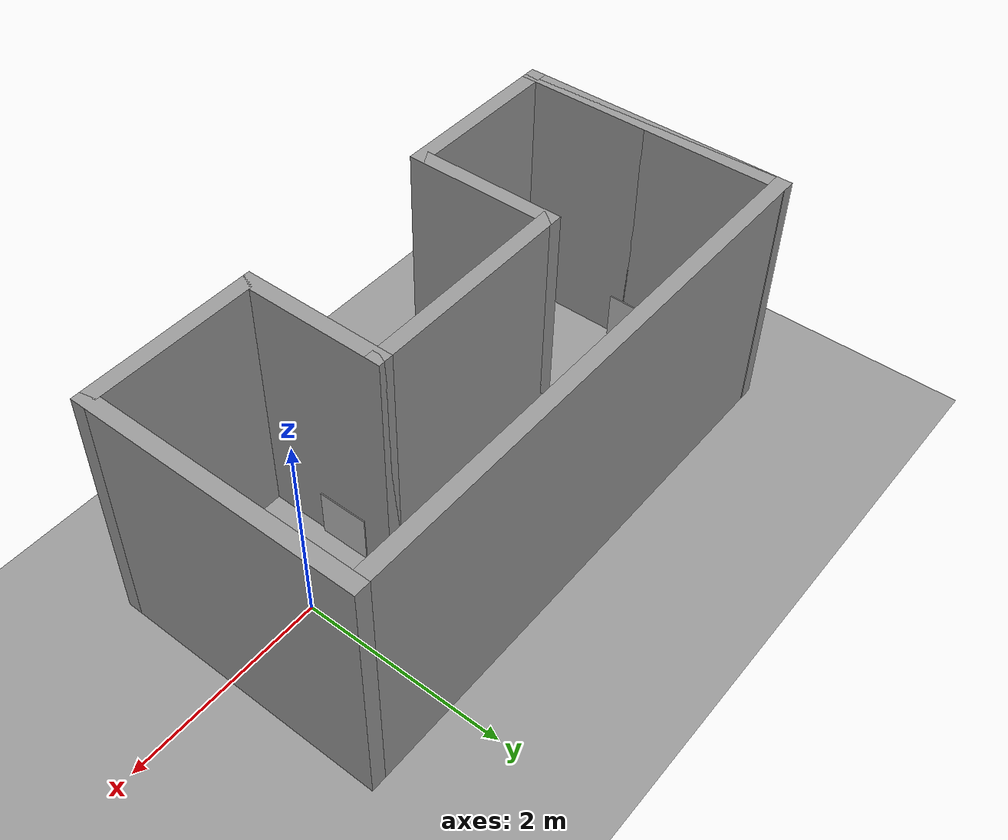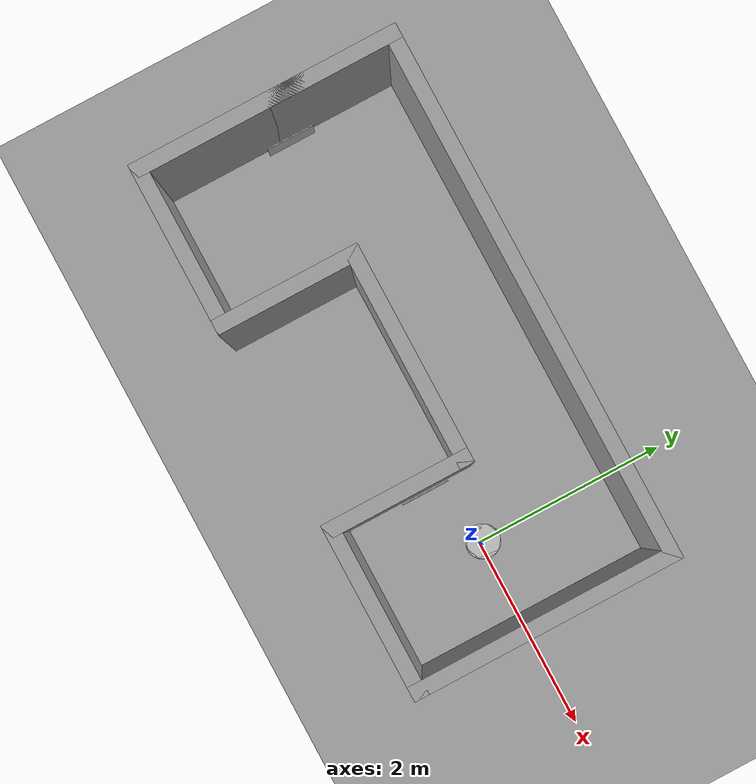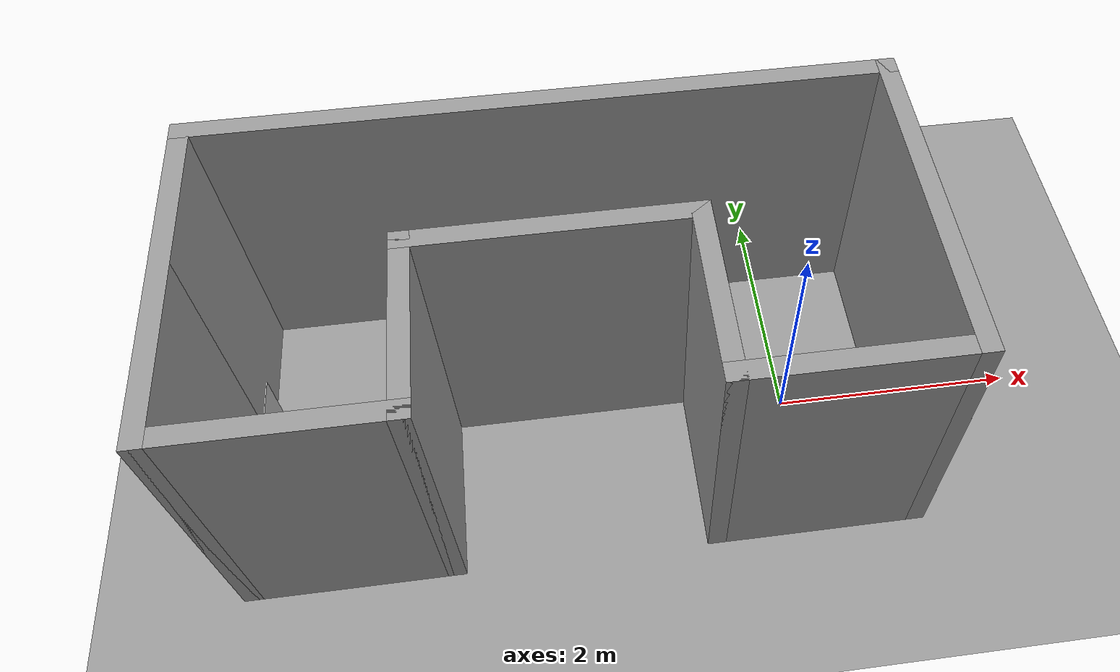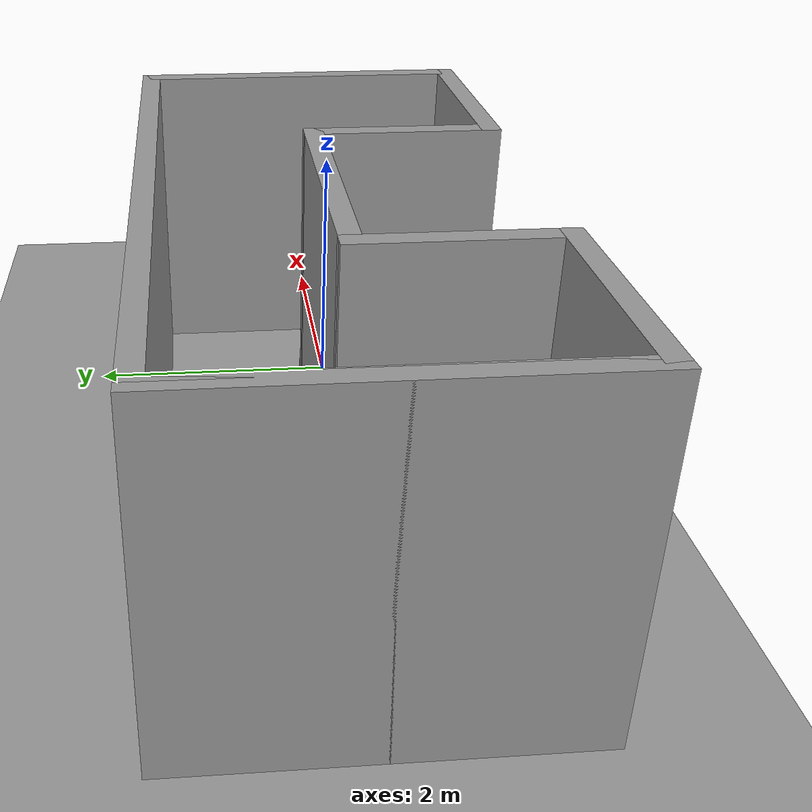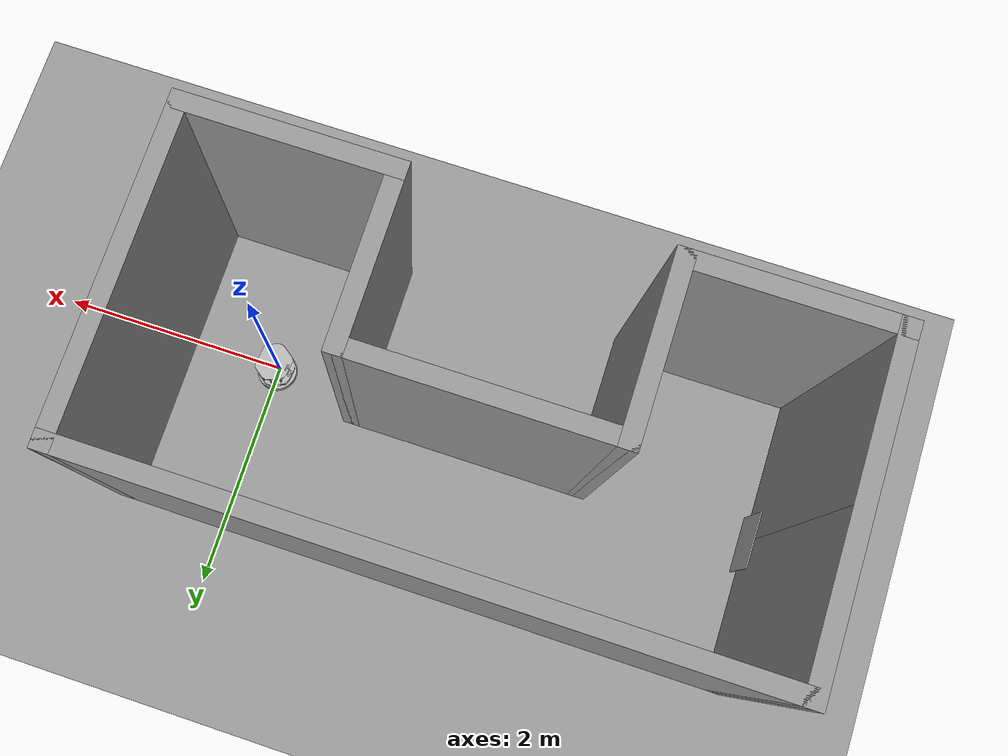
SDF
<sdf version="1.6">
 <world name="default">
  <light name="sun" type="directional">
   <pose>0 0 10 0 -0 0</pose>
   <diffuse>0.8 0.8 0.8 1</diffuse>
   <specular>0.2 0.2 0.2 1</specular>
   <attenuation>
    <range>1000</range>
    <constant>0.9</constant>
    <linear>0.01</linear>
    <quadratic>0.001</quadratic>
   </attenuation>
   <direction>0.5 0.1 -0.9</direction>
  </light>
  <scene><ambient>0.4 0.4 0.4 1</ambient><background>0.7 0.7 0.7 1</background><shadows>1</shadows></scene>
  <physics name="default_physics" default="0" type="ode">
   <max_step_size>0.01</max_step_size>
   <real_time_factor>1</real_time_factor>
   <real_time_update_rate>100</real_time_update_rate>
  </physics>
  <model name="ground_plane_0">
   <static>1</static>
   <link name="link">
    <collision name="collision">
     <geometry><plane><normal>0 0 1</normal><size>100 100</size></plane></geometry>
     <surface><friction><ode><mu>100</mu><mu2>50</mu2></ode></friction></surface>
    </collision>
    <visual name="visual">
     <cast_shadows>0</cast_shadows>
     <geometry><plane><normal>0 0 1</normal><size>100 100</size></plane></geometry>
     <material>
      <script><uri>file://media/materials/scripts/gazebo.material</uri><name>Gazebo/Grey</name></script>
     </material>
    </visual>
    <velocity_decay><linear>0</linear><angular>0</angular></velocity_decay>
   </link>
   <pose>0.497681 0 0 0 -0 0</pose>
  </model>
  <gravity>0 0 -9.8</gravity>
  <magnetic_field>6e-06 2.3e-05 -4.2e-05</magnetic_field>
  <atmosphere type="adiabatic"/>
  <spherical_coordinates>
   <surface_model>EARTH_WGS84</surface_model>
   <latitude_deg>0</latitude_deg>
   <longitude_deg>0</longitude_deg>
   <elevation>0</elevation>
   <heading_deg>0</heading_deg>
  </spherical_coordinates>
  <model name="mobile_base">
   <link name="base_footprint">
    <inertial>
     <pose>-0.002635 -4.1e-05 0.129243 0 -0 0</pose>
     <mass>4.6973</mass>
     <inertia>
      <ixx>0.1365</ixx>
      <ixy>-2.51802e-05</ixy>
      <ixz>0.0108194</ixz>
      <iyy>0.132157</iyy>
      <iyz>4.89572e-05</iyz>
      <izz>0.0741648</izz>
     </inertia>
    </inertial>
    <collision name="base_footprint_fixed_joint_lump__base_collision">
     <pose>0 0 0.06969 0 -0 0</pose>
     <geometry><cylinder><length>0.10938</length><radius>0.178</radius></cylinder></geometry>
    </collision>
    <collision name="base_footprint_fixed_joint_lump__camera_link_collision_1">
     <pose>-0.087 -0.0015 0.2972 0 -0 0</pose>
     <geometry><box><size>0.073 0.276 0.072</size></box></geometry>
    </collision>
    <collision name="base_footprint_fixed_joint_lump__caster_back_link_collision_2">
     <pose>-0.135 0 0.0192 -1.5708 0 0</pose>
     <geometry><cylinder><length>0.0176</length><radius>0.017</radius></cylinder></geometry>
     <surface>
      <contact><ode><kp>1e+06</kp><kd>100</kd><max_vel>1</max_vel><min_depth>0.001</min_depth></ode></contact>
      <friction><ode><mu>0</mu><mu2>0</mu2></ode></friction>
     </surface>
    </collision>
    <collision name="base_footprint_fixed_joint_lump__caster_front_link_collision_3">
     <pose>0.115 0 0.0172 -1.5708 0 0</pose>
     <geometry><cylinder><length>0.0176</length><radius>0.017</radius></cylinder></geometry>
     <surface>
      <contact><ode><kp>1e+06</kp><kd>100</kd><max_vel>1</max_vel><min_depth>0.001</min_depth></ode></contact>
      <friction><ode><mu>0</mu><mu2>0</mu2></ode></friction>
     </surface>
    </collision>
    <collision name="base_footprint_fixed_joint_lump__mount_asus_xtion_pro_link_collision_4">
     <pose>-0.1024 0 0.2822 0 -0 0</pose>
     <geometry><box><size>0.033 0.276 0.012</size></box></geometry>
    </collision>
    <collision name="base_footprint_fixed_joint_lump__plate_bottom_link_collision_5">
     <pose>0 0 0.1408 0 -0 0</pose>
     <geometry><cylinder><length>0.006</length><radius>0.17</radius></cylinder></geometry>
    </collision>
    <collision name="base_footprint_fixed_joint_lump__plate_middle_link_collision_6">
     <pose>0 0 0.1976 0 -0 0</pose>
     <geometry><cylinder><length>0.006</length><radius>0.17</radius></cylinder></geometry>
    </collision>
    <collision name="base_footprint_fixed_joint_lump__plate_top_link_collision_7">
     <pose>0 0 0.4068 0 -0 0</pose>
     <geometry><cylinder><length>0.006</length><radius>0.17</radius></cylinder></geometry>
    </collision>
    <collision name="base_footprint_fixed_joint_lump__pole_bottom_0_link_collision_8">
     <pose>0.12 0.082 0.113 0 -0 0</pose>
     <geometry><cylinder><length>0.0492</length><radius>0.006</radius></cylinder></geometry>
    </collision>
    <collision name="base_footprint_fixed_joint_lump__pole_bottom_1_link_collision_9">
     <pose>0.055 0.12 0.113 0 -0 0</pose>
     <geometry><cylinder><length>0.0492</length><radius>0.006</radius></cylinder></geometry>
    </collision>
    <collision name="base_footprint_fixed_joint_lump__pole_bottom_2_link_collision_10">
     <pose>-0.055 0.12 0.113 0 -0 0</pose>
     <geometry><cylinder><length>0.0492</length><radius>0.006</radius></cylinder></geometry>
    </collision>
    <collision name="base_footprint_fixed_joint_lump__pole_bottom_3_link_collision_11">
     <pose>0.12 -0.082 0.113 0 -0 0</pose>
     <geometry><cylinder><length>0.0492</length><radius>0.006</radius></cylinder></geometry>
    </collision>
    <collision name="base_footprint_fixed_joint_lump__pole_bottom_4_link_collision_12">
     <pose>0.055 -0.12 0.113 0 -0 0</pose>
     <geometry><cylinder><length>0.0492</length><radius>0.006</radius></cylinder></geometry>
    </collision>
    <collision name="base_footprint_fixed_joint_lump__pole_bottom_5_link_collision_13">
     <pose>-0.055 -0.12 0.113 0 -0 0</pose>
     <geometry><cylinder><length>0.0492</length><radius>0.006</radius></cylinder></geometry>
    </collision>
    <collision name="base_footprint_fixed_joint_lump__pole_kinect_0_link_collision_14">
     <pose>-0.1024 0.098 0.2474 0 -0 0</pose>
     <geometry><cylinder><length>0.0936</length><radius>0.006</radius></cylinder></geometry>
    </collision>
    <collision name="base_footprint_fixed_joint_lump__pole_kinect_1_link_collision_15">
     <pose>-0.1024 -0.098 0.2474 0 -0 0</pose>
     <geometry><cylinder><length>0.0936</length><radius>0.006</radius></cylinder></geometry>
    </collision>
    <collision name="base_footprint_fixed_joint_lump__pole_middle_0_link_collision_16">
     <pose>0.0381 0.1505 0.1742 0 -0 0</pose>
     <geometry><cylinder><length>0.0608</length><radius>0.006</radius></cylinder></geometry>
    </collision>
    <collision name="base_footprint_fixed_joint_lump__pole_middle_1_link_collision_17">
     <pose>0.0381 -0.1505 0.1742 0 -0 0</pose>
     <geometry><cylinder><length>0.0608</length><radius>0.006</radius></cylinder></geometry>
    </collision>
    <collision name="base_footprint_fixed_joint_lump__pole_middle_2_link_collision_18">
     <pose>-0.0381 0.1505 0.1742 0 -0 0</pose>
     <geometry><cylinder><length>0.0608</length><radius>0.006</radius></cylinder></geometry>
    </collision>
    <collision name="base_footprint_fixed_joint_lump__pole_middle_3_link_collision_19">
     <pose>-0.0381 -0.1505 0.1742 0 -0 0</pose>
     <geometry><cylinder><length>0.0608</length><radius>0.006</radius></cylinder></geometry>
    </collision>
    <collision name="base_footprint_fixed_joint_lump__pole_top_0_link_collision_20">
     <pose>0.0381 0.1505 0.3022 0 -0 0</pose>
     <geometry><cylinder><length>0.2032</length><radius>0.006</radius></cylinder></geometry>
    </collision>
    <collision name="base_footprint_fixed_joint_lump__pole_top_1_link_collision_21">
     <pose>0.0381 -0.1505 0.3022 0 -0 0</pose>
     <geometry><cylinder><length>0.2032</length><radius>0.006</radius></cylinder></geometry>
    </collision>
    <collision name="base_footprint_fixed_joint_lump__pole_top_2_link_collision_22">
     <pose>-0.0381 0.1505 0.3022 0 -0 0</pose>
     <geometry><cylinder><length>0.2032</length><radius>0.006</radius></cylinder></geometry>
    </collision>
    <collision name="base_footprint_fixed_joint_lump__pole_top_3_link_collision_23">
     <pose>-0.0381 -0.1505 0.3022 0 -0 0</pose>
     <geometry><cylinder><length>0.2032</length><radius>0.006</radius></cylinder></geometry>
    </collision>
    <visual name="base_footprint_fixed_joint_lump__base_link_visual">
     <pose>0.001 0 0.06219 0 -0 0</pose>
     <geometry>
      <mesh><scale>1 1 1</scale><uri>/opt/ros/kinetic/share/kobuki_description/meshes/main_body.dae</uri></mesh>
     </geometry>
     <material><script><uri>__default__</uri><name>__default__</name></script></material>
    </visual>
    <visual name="base_footprint_fixed_joint_lump__camera_link_visual_1">
     <pose>-0.102 0.002 0.3012 0 -0 0</pose>
     <geometry>
      <mesh>
       <scale>1 1 1</scale>
       <uri>/opt/ros/kinetic/share/turtlebot_description/meshes/sensors/xtion_pro_camera.dae</uri>
      </mesh>
     </geometry>
     <material><script><uri>__default__</uri><name>__default__</name></script></material>
    </visual>
    <visual name="base_footprint_fixed_joint_lump__mount_asus_xtion_pro_link_visual_2">
     <pose>-0.1024 0 0.2822 -1.5708 0 0</pose>
     <geometry>
      <mesh>
       <scale>1 1 1</scale>
       <uri>/opt/ros/kinetic/share/turtlebot_description/meshes/sensors/xtion_pro_stack.dae</uri>
      </mesh>
     </geometry>
    </visual>
    <visual name="base_footprint_fixed_joint_lump__plate_bottom_link_visual_3">
     <pose>0.02364 0 0.1408 0 -0 0</pose>
     <geometry>
      <mesh>
       <scale>1 1 1</scale>
       <uri>/opt/ros/kinetic/share/turtlebot_description/meshes/stacks/hexagons/plate_bottom.dae</uri>
      </mesh>
     </geometry>
    </visual>
    <visual name="base_footprint_fixed_joint_lump__plate_middle_link_visual_4">
     <pose>-0.01364 0 0.1976 0 -0 0</pose>
     <geometry>
      <mesh>
       <scale>1 1 1</scale>
       <uri>/opt/ros/kinetic/share/turtlebot_description/meshes/stacks/hexagons/plate_middle.dae</uri>
      </mesh>
     </geometry>
    </visual>
    <visual name="base_footprint_fixed_joint_lump__plate_top_link_visual_5">
     <pose>-0.01364 0 0.4068 0 -0 0</pose>
     <geometry>
      <mesh>
       <scale>1 1 1</scale>
       <uri>/opt/ros/kinetic/share/turtlebot_description/meshes/stacks/hexagons/plate_top.dae</uri>
      </mesh>
     </geometry>
    </visual>
    <visual name="base_footprint_fixed_joint_lump__pole_bottom_0_link_visual_6">
     <pose>0.12 0.082 0.113 0 -0 0</pose>
     <geometry>
      <mesh>
       <scale>1 1 1</scale>
       <uri>/opt/ros/kinetic/share/turtlebot_description/meshes/stacks/hexagons/pole_bottom.dae</uri>
      </mesh>
     </geometry>
    </visual>
    <visual name="base_footprint_fixed_joint_lump__pole_bottom_1_link_visual_7">
     <pose>0.055 0.12 0.113 0 -0 0</pose>
     <geometry>
      <mesh>
       <scale>1 1 1</scale>
       <uri>/opt/ros/kinetic/share/turtlebot_description/meshes/stacks/hexagons/pole_bottom.dae</uri>
      </mesh>
     </geometry>
    </visual>
    <visual name="base_footprint_fixed_joint_lump__pole_bottom_2_link_visual_8">
     <pose>-0.055 0.12 0.113 0 -0 0</pose>
     <geometry>
      <mesh>
       <scale>1 1 1</scale>
       <uri>/opt/ros/kinetic/share/turtlebot_description/meshes/stacks/hexagons/pole_bottom.dae</uri>
      </mesh>
     </geometry>
    </visual>
    <visual name="base_footprint_fixed_joint_lump__pole_bottom_3_link_visual_9">
     <pose>0.12 -0.082 0.113 0 -0 0</pose>
     <geometry>
      <mesh>
       <scale>1 1 1</scale>
       <uri>/opt/ros/kinetic/share/turtlebot_description/meshes/stacks/hexagons/pole_bottom.dae</uri>
      </mesh>
     </geometry>
    </visual>
    <visual name="base_footprint_fixed_joint_lump__pole_bottom_4_link_visual_10">
     <pose>0.055 -0.12 0.113 0 -0 0</pose>
     <geometry>
      <mesh>
       <scale>1 1 1</scale>
       <uri>/opt/ros/kinetic/share/turtlebot_description/meshes/stacks/hexagons/pole_bottom.dae</uri>
      </mesh>
     </geometry>
    </visual>
    <visual name="base_footprint_fixed_joint_lump__pole_bottom_5_link_visual_11">
     <pose>-0.055 -0.12 0.113 0 -0 0</pose>
     <geometry>
      <mesh>
       <scale>1 1 1</scale>
       <uri>/opt/ros/kinetic/share/turtlebot_description/meshes/stacks/hexagons/pole_bottom.dae</uri>
      </mesh>
     </geometry>
    </visual>
    <visual name="base_footprint_fixed_joint_lump__pole_kinect_0_link_visual_12">
     <pose>-0.1024 0.098 0.2374 0 -0 0</pose>
     <geometry>
      <mesh>
       <scale>1 1 1</scale>
       <uri>/opt/ros/kinetic/share/turtlebot_description/meshes/sensors/sensor_pole.dae</uri>
      </mesh>
     </geometry>
    </visual>
    <visual name="base_footprint_fixed_joint_lump__pole_kinect_1_link_visual_13">
     <pose>-0.1024 -0.098 0.2374 0 -0 0</pose>
     <geometry>
      <mesh>
       <scale>1 1 1</scale>
       <uri>/opt/ros/kinetic/share/turtlebot_description/meshes/sensors/sensor_pole.dae</uri>
      </mesh>
     </geometry>
    </visual>
    <visual name="base_footprint_fixed_joint_lump__pole_middle_0_link_visual_14">
     <pose>0.0381 0.1505 0.1742 3.14159 -0 3.14159</pose>
     <geometry>
      <mesh>
       <scale>1 1 1</scale>
       <uri>/opt/ros/kinetic/share/turtlebot_description/meshes/stacks/hexagons/pole_middle.dae</uri>
      </mesh>
     </geometry>
    </visual>
    <visual name="base_footprint_fixed_joint_lump__pole_middle_1_link_visual_15">
     <pose>0.0381 -0.1505 0.1742 3.14159 -0 3.14159</pose>
     <geometry>
      <mesh>
       <scale>1 1 1</scale>
       <uri>/opt/ros/kinetic/share/turtlebot_description/meshes/stacks/hexagons/pole_middle.dae</uri>
      </mesh>
     </geometry>
    </visual>
    <visual name="base_footprint_fixed_joint_lump__pole_middle_2_link_visual_16">
     <pose>-0.0381 0.1505 0.1742 3.14159 -0 3.14159</pose>
     <geometry>
      <mesh>
       <scale>1 1 1</scale>
       <uri>/opt/ros/kinetic/share/turtlebot_description/meshes/stacks/hexagons/pole_middle.dae</uri>
      </mesh>
     </geometry>
    </visual>
    <visual name="base_footprint_fixed_joint_lump__pole_middle_3_link_visual_17">
     <pose>-0.0381 -0.1505 0.1742 3.14159 -0 3.14159</pose>
     <geometry>
      <mesh>
       <scale>1 1 1</scale>
       <uri>/opt/ros/kinetic/share/turtlebot_description/meshes/stacks/hexagons/pole_middle.dae</uri>
      </mesh>
     </geometry>
    </visual>
    <visual name="base_footprint_fixed_joint_lump__pole_top_0_link_visual_18">
     <pose>0.0381 0.1505 0.3022 0 -0 0</pose>
     <geometry>
      <mesh>
       <scale>1 1 1</scale>
       <uri>/opt/ros/kinetic/share/turtlebot_description/meshes/stacks/hexagons/pole_top.dae</uri>
      </mesh>
     </geometry>
    </visual>
    <visual name="base_footprint_fixed_joint_lump__pole_top_1_link_visual_19">
     <pose>0.0381 -0.1505 0.3022 0 -0 0</pose>
     <geometry>
      <mesh>
       <scale>1 1 1</scale>
       <uri>/opt/ros/kinetic/share/turtlebot_description/meshes/stacks/hexagons/pole_top.dae</uri>
      </mesh>
     </geometry>
    </visual>
    <visual name="base_footprint_fixed_joint_lump__pole_top_2_link_visual_20">
     <pose>-0.0381 0.1505 0.3022 0 -0 0</pose>
     <geometry>
      <mesh>
       <scale>1 1 1</scale>
       <uri>/opt/ros/kinetic/share/turtlebot_description/meshes/stacks/hexagons/pole_top.dae</uri>
      </mesh>
     </geometry>
    </visual>
    <visual name="base_footprint_fixed_joint_lump__pole_top_3_link_visual_21">
     <pose>-0.0381 -0.1505 0.3022 0 -0 0</pose>
     <geometry>
      <mesh>
       <scale>1 1 1</scale>
       <uri>/opt/ros/kinetic/share/turtlebot_description/meshes/stacks/hexagons/pole_top.dae</uri>
      </mesh>
     </geometry>
    </visual>
    <sensor name="bumpers" type="contact">
     <always_on>1</always_on>
     <update_rate>50</update_rate>
     <visualize>1</visualize>
     <contact>
      <collision>base_footprint_fixed_joint_lump__base_collision</collision>
      <topic>__default_topic__</topic>
     </contact>
     <pose>0 0 0.0102 0 -0 0</pose>
    </sensor>
    <sensor name="camera" type="depth">
     <always_on>1</always_on>
     <update_rate>20</update_rate>
     <camera name="__default__">
      <horizontal_fov>1.0472</horizontal_fov>
      <image><format>B8G8R8</format><width>640</width><height>480</height></image>
      <clip><near>0.05</near><far>8</far></clip>
     </camera>
     <plugin name="kinect_camera_controller" filename="libgazebo_ros_openni_kinect.so">
      <cameraName>camera</cameraName>
      <alwaysOn>true</alwaysOn>
      <updateRate>10</updateRate>
      <imageTopicName>rgb/image_raw</imageTopicName>
      <depthImageTopicName>depth/image_raw</depthImageTopicName>
      <pointCloudTopicName>depth/points</pointCloudTopicName>
      <cameraInfoTopicName>rgb/camera_info</cameraInfoTopicName>
      <depthImageCameraInfoTopicName>depth/camera_info</depthImageCameraInfoTopicName>
      <frameName>camera_depth_optical_frame</frameName>
      <baseline>0.1</baseline>
      <distortion_k1>0.0</distortion_k1>
      <distortion_k2>0.0</distortion_k2>
      <distortion_k3>0.0</distortion_k3>
      <distortion_t1>0.0</distortion_t1>
      <distortion_t2>0.0</distortion_t2>
      <pointCloudCutoff>0.4</pointCloudCutoff>
      <robotNamespace>/</robotNamespace>
     </plugin>
     <pose>-0.087 -0.0015 0.2972 0 -0 0</pose>
    </sensor>
    <sensor name="cliff_sensor_front" type="ray">
     <always_on>1</always_on>
     <update_rate>50</update_rate>
     <visualize>1</visualize>
     <ray>
      <scan>
       <horizontal>
        <samples>50</samples>
        <resolution>1</resolution>
        <min_angle>-0.0436</min_angle>
        <max_angle>0.0436</max_angle>
       </horizontal>
       <vertical><samples>1</samples><min_angle>0</min_angle><max_angle>0</max_angle></vertical>
      </scan>
      <range><min>0.01</min><max>0.15</max><resolution>1</resolution></range>
     </ray>
     <pose>0.156 0 0.0316 3.14159 1.57079 3.14159</pose>
    </sensor>
    <sensor name="cliff_sensor_left" type="ray">
     <always_on>1</always_on>
     <update_rate>50</update_rate>
     <visualize>1</visualize>
     <ray>
      <scan>
       <horizontal>
        <samples>50</samples>
        <resolution>1</resolution>
        <min_angle>-0.0436</min_angle>
        <max_angle>0.0436</max_angle>
       </horizontal>
       <vertical><samples>1</samples><min_angle>0</min_angle><max_angle>0</max_angle></vertical>
      </scan>
      <range><min>0.01</min><max>0.15</max><resolution>1</resolution></range>
     </ray>
     <pose>0.08734 0.13601 0.0316 3.14159 1.57079 3.14159</pose>
    </sensor>
    <sensor name="cliff_sensor_right" type="ray">
     <always_on>1</always_on>
     <update_rate>50</update_rate>
     <visualize>1</visualize>
     <ray>
      <scan>
       <horizontal>
        <samples>50</samples>
        <resolution>1</resolution>
        <min_angle>-0.0436</min_angle>
        <max_angle>0.0436</max_angle>
       </horizontal>
       <vertical><samples>1</samples><min_angle>0</min_angle><max_angle>0</max_angle></vertical>
      </scan>
      <range><min>0.01</min><max>0.15</max><resolution>1</resolution></range>
     </ray>
     <pose>0.085 -0.13601 0.0316 3.14159 1.57079 3.14159</pose>
    </sensor>
    <sensor name="imu" type="imu">
     <always_on>1</always_on>
     <update_rate>50</update_rate>
     <visualize>0</visualize>
     <imu>
      <angular_velocity>
       <x>
        <noise type="gaussian">
         <mean>0</mean>
         <stddev>1.96e-06</stddev>
         <bias_mean>0</bias_mean>
         <bias_stddev>0</bias_stddev>
        </noise>
       </x>
       <y>
        <noise type="gaussian">
         <mean>0</mean>
         <stddev>1.96e-06</stddev>
         <bias_mean>0</bias_mean>
         <bias_stddev>0</bias_stddev>
        </noise>
       </y>
       <z>
        <noise type="gaussian">
         <mean>0</mean>
         <stddev>1.96e-06</stddev>
         <bias_mean>0</bias_mean>
         <bias_stddev>0</bias_stddev>
        </noise>
       </z>
      </angular_velocity>
      <linear_acceleration>
       <x>
        <noise type="gaussian">
         <mean>0</mean>
         <stddev>0.017</stddev>
         <bias_mean>0.1</bias_mean>
         <bias_stddev>0.001</bias_stddev>
        </noise>
       </x>
       <y>
        <noise type="gaussian">
         <mean>0</mean>
         <stddev>0.017</stddev>
         <bias_mean>0.1</bias_mean>
         <bias_stddev>0.001</bias_stddev>
        </noise>
       </y>
       <z>
        <noise type="gaussian">
         <mean>0</mean>
         <stddev>0.017</stddev>
         <bias_mean>0.1</bias_mean>
         <bias_stddev>0.001</bias_stddev>
        </noise>
       </z>
      </linear_acceleration>
     </imu>
     <pose>0.056 0.062 0.0304 0 -0 0</pose>
    </sensor>
   </link>
   <link name="wheel_left_link">
    <pose>0 0.115 0.0352 -1.5708 0 0</pose>
    <inertial>
     <mass>0.01</mass>
     <inertia><ixx>0.001</ixx><ixy>0</ixy><ixz>0</ixz><iyy>0.001</iyy><iyz>0</iyz><izz>0.001</izz></inertia>
    </inertial>
    <collision name="wheel_left_link_collision">
     <geometry><cylinder><length>0.0206</length><radius>0.0352</radius></cylinder></geometry>
     <surface>
      <contact><ode><kp>1e+06</kp><kd>100</kd><max_vel>1</max_vel><min_depth>0.001</min_depth></ode></contact>
      <friction><ode><mu>1</mu><mu2>1</mu2></ode></friction>
     </surface>
    </collision>
    <visual name="wheel_left_link_visual">
     <geometry>
      <mesh><scale>1 1 1</scale><uri>/opt/ros/kinetic/share/kobuki_description/meshes/wheel.dae</uri></mesh>
     </geometry>
     <material><script><uri>__default__</uri><name>__default__</name></script></material>
    </visual>
   </link>
   <joint name="wheel_left_joint" type="revolute">
    <child>wheel_left_link</child>
    <parent>base_footprint</parent>
    <axis>
     <xyz>0 1 0</xyz>
     <limit><lower>-1e+16</lower><upper>1e+16</upper></limit>
     <dynamics><spring_reference>0</spring_reference><spring_stiffness>0</spring_stiffness></dynamics>
     <use_parent_model_frame>1</use_parent_model_frame>
    </axis>
   </joint>
   <link name="wheel_right_link">
    <pose>0 -0.115 0.0352 -1.5708 0 0</pose>
    <inertial>
     <mass>0.01</mass>
     <inertia><ixx>0.001</ixx><ixy>0</ixy><ixz>0</ixz><iyy>0.001</iyy><iyz>0</iyz><izz>0.001</izz></inertia>
    </inertial>
    <collision name="wheel_right_link_collision">
     <geometry><cylinder><length>0.0206</length><radius>0.035</radius></cylinder></geometry>
     <surface>
      <contact><ode><kp>1e+06</kp><kd>100</kd><max_vel>1</max_vel><min_depth>0.001</min_depth></ode></contact>
      <friction><ode><mu>1</mu><mu2>1</mu2></ode></friction>
     </surface>
    </collision>
    <visual name="wheel_right_link_visual">
     <geometry>
      <mesh><scale>1 1 1</scale><uri>/opt/ros/kinetic/share/kobuki_description/meshes/wheel.dae</uri></mesh>
     </geometry>
     <material><script><uri>__default__</uri><name>__default__</name></script></material>
    </visual>
   </link>
   <joint name="wheel_right_joint" type="revolute">
    <child>wheel_right_link</child>
    <parent>base_footprint</parent>
    <axis>
     <xyz>0 1 0</xyz>
     <limit><lower>-1e+16</lower><upper>1e+16</upper></limit>
     <dynamics><spring_reference>0</spring_reference><spring_stiffness>0</spring_stiffness></dynamics>
     <use_parent_model_frame>1</use_parent_model_frame>
    </axis>
   </joint>
   <static>0</static>
   <plugin name="kobuki_controller" filename="libgazebo_ros_kobuki.so">
    <publish_tf>1</publish_tf>
    <left_wheel_joint_name>wheel_left_joint</left_wheel_joint_name>
    <right_wheel_joint_name>wheel_right_joint</right_wheel_joint_name>
    <wheel_separation>.230</wheel_separation>
    <wheel_diameter>0.070</wheel_diameter>
    <torque>1.0</torque>
    <velocity_command_timeout>0.6</velocity_command_timeout>
    <cliff_sensor_left_name>cliff_sensor_left</cliff_sensor_left_name>
    <cliff_sensor_center_name>cliff_sensor_front</cliff_sensor_center_name>
    <cliff_sensor_right_name>cliff_sensor_right</cliff_sensor_right_name>
    <cliff_detection_threshold>0.04</cliff_detection_threshold>
    <bumper_name>bumpers</bumper_name>
    <imu_name>imu</imu_name>
    <robotNamespace>/</robotNamespace>
   </plugin>
   <pose>0.0053 0.037888 -0.001131 2e-06 -0.007997 -0.104156</pose>
  </model>
  <model name="room">
   <pose>-1.80367 0.153194 0 0 -0 0</pose>
   <link name="Wall_0">
    <collision name="Wall_0_Collision">
     <geometry><box><size>2.75 0.15 2.5</size></box></geometry>
     <pose>0 0 1.25 0 -0 0</pose>
    </collision>
    <visual name="Wall_0_Visual">
     <pose>0 0 1.25 0 -0 0</pose>
     <geometry><box><size>2.75 0.15 2.5</size></box></geometry>
     <material>
      <script><uri>file://media/materials/scripts/gazebo.material</uri><name>Gazebo/Grey</name></script>
      <ambient>1 1 1 1</ambient>
     </material>
    </visual>
    <pose>-2.675 0 0 0 0 -1.5708</pose>
   </link>
   <link name="Wall_1">
    <collision name="Wall_1_Collision">
     <geometry><box><size>2.75 0.15 2.5</size></box></geometry>
     <pose>0 0 1.25 0 -0 0</pose>
    </collision>
    <visual name="Wall_1_Visual">
     <pose>0 0 1.25 0 -0 0</pose>
     <geometry><box><size>2.75 0.15 2.5</size></box></geometry>
     <material>
      <script><uri>file://media/materials/scripts/gazebo.material</uri><name>Gazebo/Grey</name></script>
      <ambient>1 1 1 1</ambient>
     </material>
    </visual>
    <pose>-2.675 0 0 0 -0 1.5708</pose>
   </link>
   <link name="Wall_2">
    <collision name="Wall_2_Collision">
     <geometry><box><size>5.5 0.15 2.5</size></box></geometry>
     <pose>0 0 1.25 0 -0 0</pose>
    </collision>
    <visual name="Wall_2_Visual">
     <pose>0 0 1.25 0 -0 0</pose>
     <geometry><box><size>5.5 0.15 2.5</size></box></geometry>
     <material>
      <script><uri>file://media/materials/scripts/gazebo.material</uri><name>Gazebo/Grey</name></script>
      <ambient>1 1 1 1</ambient>
     </material>
    </visual>
    <pose>0 1.3 0 0 -0 0</pose>
   </link>
   <link name="Wall_3">
    <collision name="Wall_3_Collision">
     <geometry><box><size>2.75 0.15 2.5</size></box></geometry>
     <pose>0 0 1.25 0 -0 0</pose>
    </collision>
    <visual name="Wall_3_Visual">
     <pose>0 0 1.25 0 -0 0</pose>
     <geometry><box><size>2.75 0.15 2.5</size></box></geometry>
     <material>
      <script><uri>file://media/materials/scripts/gazebo.material</uri><name>Gazebo/Grey</name></script>
      <ambient>1 1 1 1</ambient>
     </material>
    </visual>
    <pose>2.675 0 0 0 0 -1.5708</pose>
   </link>
   <link name="Wall_5">
    <collision name="Wall_5_Collision">
     <geometry><box><size>1.75 0.15 2.5</size></box></geometry>
     <pose>0 0 1.25 0 -0 0</pose>
    </collision>
    <visual name="Wall_5_Visual">
     <pose>0 0 1.25 0 -0 0</pose>
     <geometry><box><size>1.75 0.15 2.5</size></box></geometry>
     <material>
      <script><uri>file://media/materials/scripts/gazebo.material</uri><name>Gazebo/Grey</name></script>
      <ambient>1 1 1 1</ambient>
     </material>
    </visual>
    <pose>-1.875 -1.3 0 0 -0 0</pose>
   </link>
   <link name="Wall_6">
    <collision name="Wall_6_Collision">
     <geometry><box><size>1.5 0.15 2.5</size></box></geometry>
     <pose>0 0 1.25 0 -0 0</pose>
    </collision>
    <visual name="Wall_6_Visual">
     <pose>0 0 1.25 0 -0 0</pose>
     <geometry><box><size>1.5 0.15 2.5</size></box></geometry>
     <material>
      <script><uri>file://media/materials/scripts/gazebo.material</uri><name>Gazebo/Grey</name></script>
      <ambient>1 1 1 1</ambient>
     </material>
    </visual>
    <pose>-1.075 -0.625 0 0 -0 1.5708</pose>
   </link>
   <link name="Wall_7">
    <collision name="Wall_7_Collision">
     <geometry><box><size>2.25 0.15 2.5</size></box></geometry>
     <pose>0 0 1.25 0 -0 0</pose>
    </collision>
    <visual name="Wall_7_Visual">
     <pose>0 0 1.25 0 -0 0</pose>
     <geometry><box><size>2.25 0.15 2.5</size></box></geometry>
     <material>
      <script><uri>file://media/materials/scripts/gazebo.material</uri><name>Gazebo/Grey</name></script>
      <ambient>1 1 1 1</ambient>
     </material>
    </visual>
    <pose>-0.025 0.05 0 0 -0 0</pose>
   </link>
   <link name="Wall_8">
    <collision name="Wall_8_Collision">
     <geometry><box><size>1.5 0.15 2.5</size></box></geometry>
     <pose>0 0 1.25 0 -0 0</pose>
    </collision>
    <visual name="Wall_8_Visual">
     <pose>0 0 1.25 0 -0 0</pose>
     <geometry><box><size>1.5 0.15 2.5</size></box></geometry>
     <material>
      <script><uri>file://media/materials/scripts/gazebo.material</uri><name>Gazebo/Grey</name></script>
      <ambient>1 1 1 1</ambient>
     </material>
    </visual>
    <pose>1.025 -0.625 0 0 0 -1.5708</pose>
   </link>
   <link name="Wall_9">
    <collision name="Wall_9_Collision">
     <geometry><box><size>1.8 0.15 2.5</size></box></geometry>
     <pose>0 0 1.25 0 -0 0</pose>
    </collision>
    <visual name="Wall_9_Visual">
     <pose>0 0 1.25 0 -0 0</pose>
     <geometry><box><size>1.8 0.15 2.5</size></box></geometry>
     <material>
      <script><uri>file://media/materials/scripts/gazebo.material</uri><name>Gazebo/Grey</name></script>
      <ambient>1 1 1 1</ambient>
     </material>
    </visual>
    <pose>1.85 -1.3 0 0 -0 0</pose>
   </link>
   <static>1</static>
  </model>
  <model name="Marker0">
   <static>1</static>
   <link name="link">
    <visual name="visual">
     <geometry><mesh><uri>model://marker0/meshes/Marker0.dae</uri><scale>1 1 1</scale></mesh></geometry>
    </visual>
   </link>
   <pose>-0.684872 -0.238164 0 0 -0 0</pose>
  </model>
  <model name="Marker1">
   <static>1</static>
   <link name="link">
    <visual name="visual">
     <geometry><mesh><uri>model://marker1/meshes/Marker1.dae</uri><scale>1 1 1</scale></mesh></geometry>
    </visual>
   </link>
   <pose>-4.35522 0.239332 0 0 -0 0</pose>
  </model>
 </world>
</sdf>
